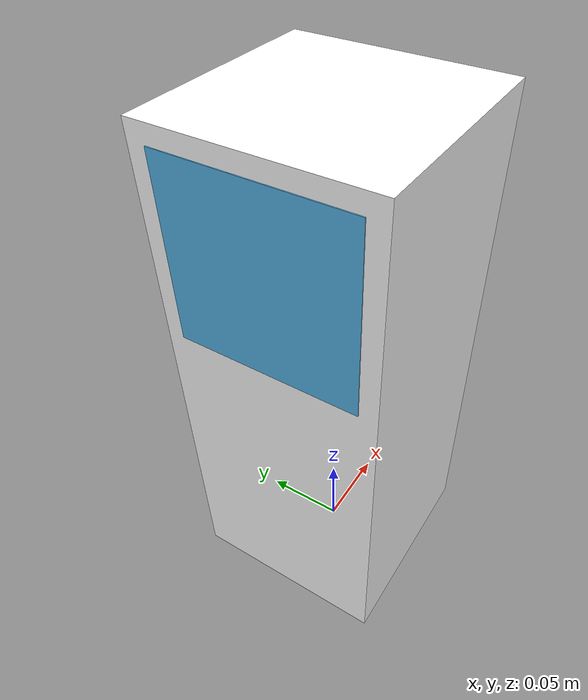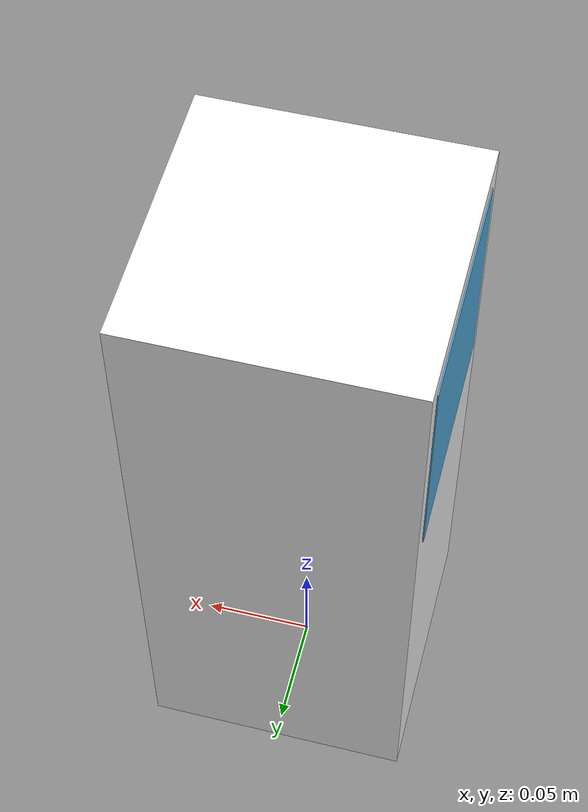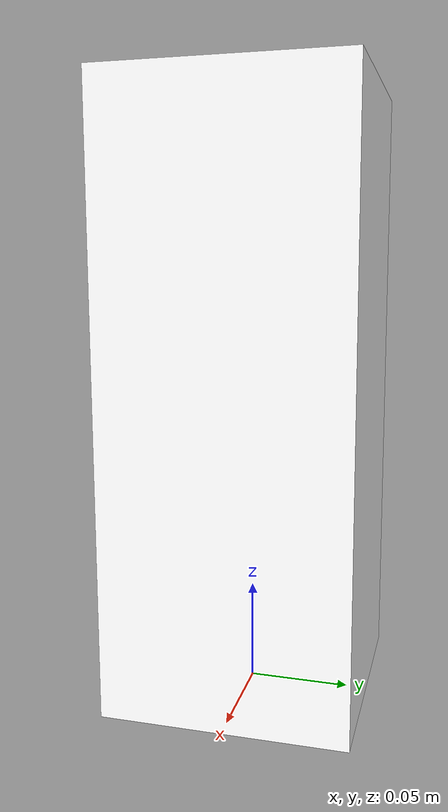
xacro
<?xml version="0.0" ?>
<robot xmlns:xacro="http://www.ros.org/wiki/xacro" name="tall_box.urdf">

  <xacro:arg name="dim_x" default="0.12"/>
  <xacro:arg name="dim_y" default="0.12"/>
  <xacro:arg name="dim_z" default="0.30"/>
  <xacro:arg name="tag_id" default="42"/>

  <link name="body">
    <contact>
      <lateral_friction value="2.0"/>
    </contact>
    <inertial>
       <origin rpy="0 0 0" xyz="0 0 ${$(arg dim_z)/2.0}"/>
       <mass value="1.0"/>
       <inertia ixx="1" ixy="0" ixz="0" iyy="1" iyz="0" izz="1"/>
    </inertial>
    <visual>
      <origin rpy="0 0 0" xyz="0 0 ${$(arg dim_z)/2.0}"/>
      <geometry>
		    <box size="$(arg dim_x) $(arg dim_y) $(arg dim_z)"/>
      </geometry>
      <material name="white">
        <color rgba="1 1 1 1"/>
      </material>
    </visual>
    <collision>
      <origin rpy="0 0 0" xyz="0 0 ${$(arg dim_z)/2.0}"/>
      <geometry>
	 	    <box size="$(arg dim_x) $(arg dim_y) $(arg dim_z)"/>
      </geometry>
    </collision>
  </link>

  <link name="tag">
    <visual>
      <origin rpy="0 0 0" xyz="0 0 0"/>
      <geometry>
		    <box size="0.1 0.1 0.001"/>
      </geometry>
    </visual>
  </link>

  <gazebo reference="tag">
    <material>aruco_6x6_100mm_$(arg tag_id)</material>
  </gazebo>

  <joint name="texture_joint" type="fixed">
    <parent link="body"/>
    <child link="tag"/>
    <origin xyz="-${$(arg dim_x)/2.0} 0 ${$(arg dim_z)-0.01-0.05}" rpy="0 1.570796327 0"/>
  </joint>
</robot>
